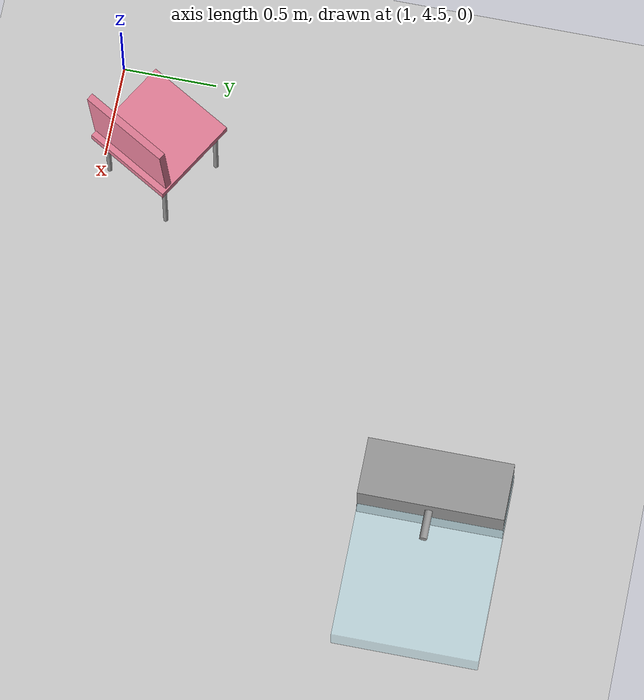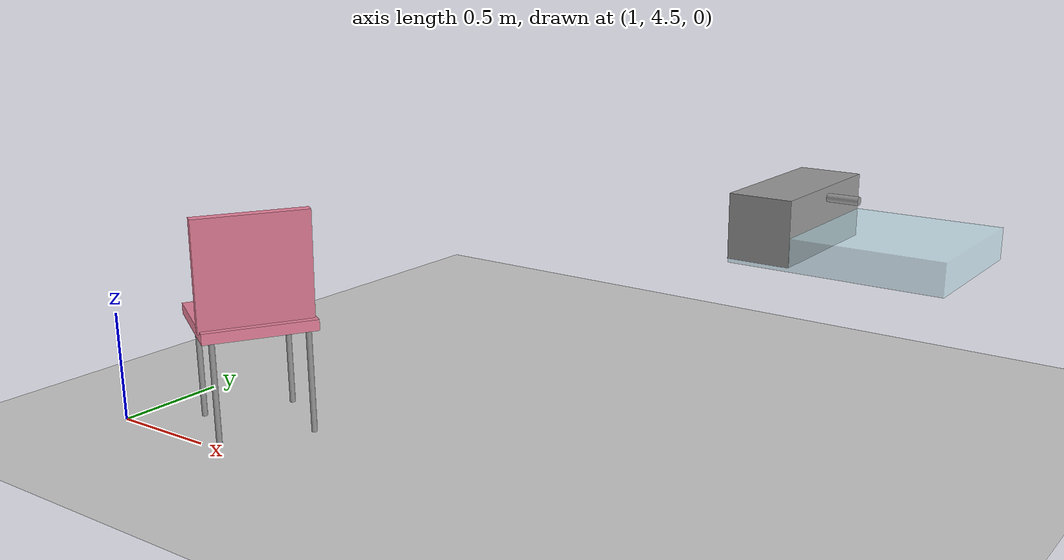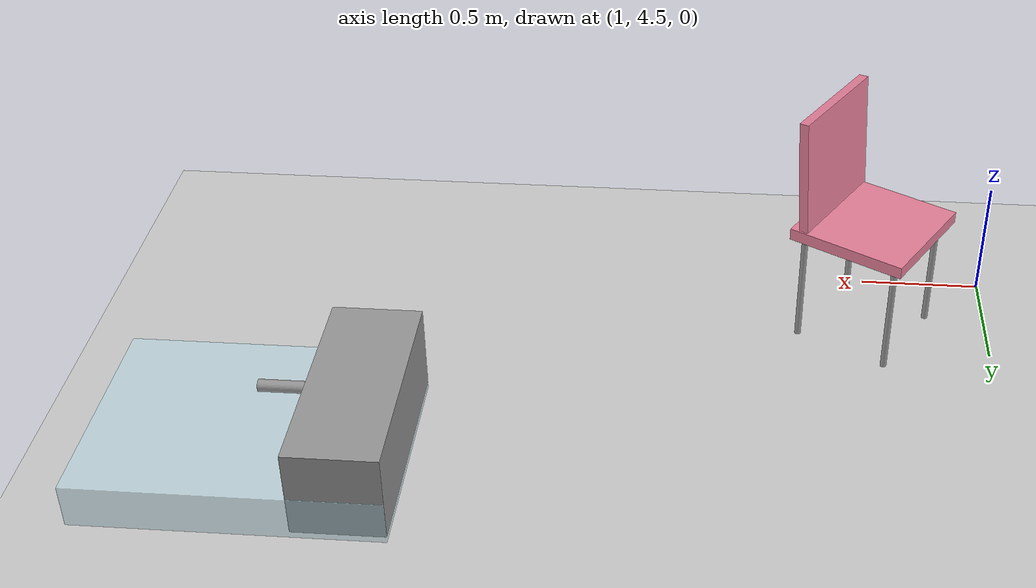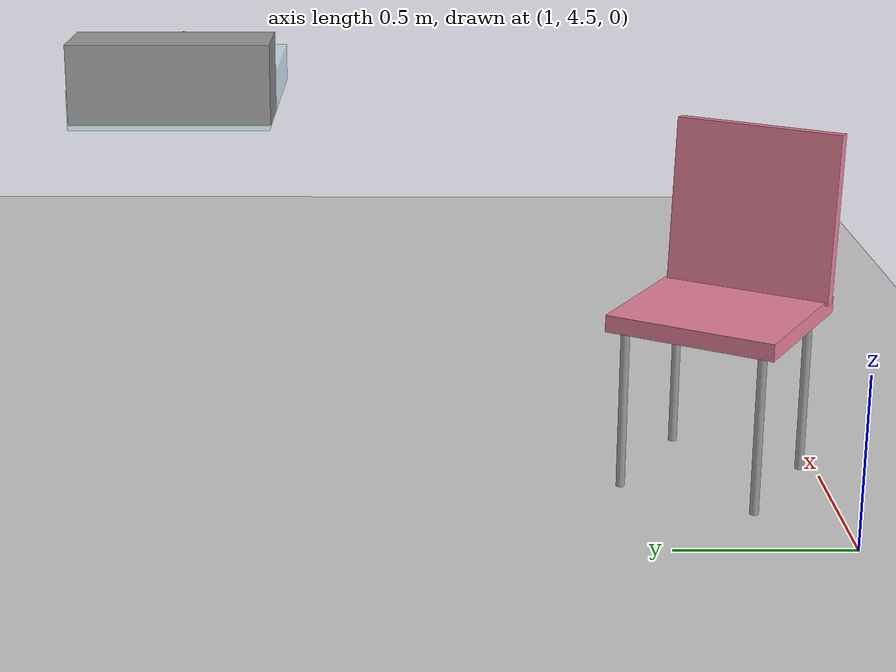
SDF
<sdf version="1.7">
 <world name="default">
  <model name="ground_plane">
   <static>1</static>
   <link name="link">
    <collision name="collision">
     <geometry><plane><normal>0 0 1</normal><size>100 100</size></plane></geometry>
     <surface>
      <contact><collide_bitmask>65535</collide_bitmask></contact>
      <friction><ode><mu>100</mu><mu2>50</mu2></ode></friction>
     </surface>
    </collision>
    <visual name="visual">
     <cast_shadows>0</cast_shadows>
     <geometry><plane><normal>0 0 1</normal><size>100 100</size></plane></geometry>
     <material>
      <script><uri>file://media/materials/scripts/gazebo.material</uri><name>Gazebo/Grey</name></script>
     </material>
    </visual>
   </link>
  </model>
  <model name="my_chair">
   <link name="link">
    <inertial>
     <mass>1</mass>
     <inertia>
      <ixx>0.166667</ixx>
      <ixy>0</ixy>
      <ixz>0</ixz>
      <iyy>0.166667</iyy>
      <iyz>0</iyz>
      <izz>0.166667</izz>
     </inertia>
    </inertial>
    <gravity>0</gravity>
    <visual name="visual">
     <geometry><box><size>0.5 0.5 0.05</size></box></geometry>
     <material>
      <script><name>Gazebo/Grey</name><uri>file://media/materials/scripts/gazebo.material</uri></script>
      <shader type="pixel"><normal_map>__default__</normal_map></shader>
      <ambient>0.9 0.5 0.6 1</ambient>
      <diffuse>0.9 0.5 0.6 1</diffuse>
      <specular>0.01 0.01 0.01 1</specular>
      <emissive>0 0 0 1</emissive>
     </material>
     <pose>0 0 0.5 0 -0 0</pose>
    </visual>
    <collision name="collision">
     <pose>0 0 0.5 0 -0 0</pose>
     <geometry><box><size>0.5 0.5 0.05</size></box></geometry>
     <surface>
      <friction>
       <ode><mu>1</mu><mu2>1</mu2><fdir1>0 0 0</fdir1><slip1>0</slip1><slip2>0</slip2></ode>
       <torsional>
        <coefficient>1</coefficient>
        <patch_radius>0</patch_radius>
        <surface_radius>0</surface_radius>
        <use_patch_radius>1</use_patch_radius>
        <ode><slip>0</slip></ode>
       </torsional>
      </friction>
      <bounce><restitution_coefficient>0</restitution_coefficient><threshold>1e+06</threshold></bounce>
      <contact>
       <collide_without_contact>0</collide_without_contact>
       <collide_without_contact_bitmask>1</collide_without_contact_bitmask>
       <collide_bitmask>1</collide_bitmask>
       <ode>
        <soft_cfm>0</soft_cfm>
        <soft_erp>0.2</soft_erp>
        <kp>1e+13</kp>
        <kd>1</kd>
        <max_vel>0.01</max_vel>
        <min_depth>0</min_depth>
       </ode>
       <bullet>
        <split_impulse>1</split_impulse>
        <split_impulse_penetration_threshold>-0.01</split_impulse_penetration_threshold>
        <soft_cfm>0</soft_cfm>
        <soft_erp>0.2</soft_erp>
        <kp>1e+13</kp>
        <kd>1</kd>
       </bullet>
      </contact>
     </surface>
    </collision>
   </link>
   <link name="link_0">
    <inertial>
     <mass>1</mass>
     <inertia><ixx>0.145833</ixx><ixy>0</ixy><ixz>0</ixz><iyy>0.145833</iyy><iyz>0</iyz><izz>0.125</izz></inertia>
    </inertial>
    <pose>-0.200315 -0.184767 -0.272701 -0 -0 -0</pose>
    <gravity>0</gravity>
    <visual name="visual">
     <pose>0 0 0.5 0 -0 0</pose>
     <geometry><cylinder><radius>0.013</radius><length>0.5</length></cylinder></geometry>
     <material>
      <lighting>1</lighting>
      <script><uri>file://media/materials/scripts/gazebo.material</uri><name>Gazebo/Grey</name></script>
      <shader type="pixel"><normal_map>__default__</normal_map></shader>
      <ambient>0.3 0.3 0.3 1</ambient>
      <diffuse>0.7 0.7 0.7 1</diffuse>
      <specular>0.01 0.01 0.01 1</specular>
      <emissive>0 0 0 1</emissive>
     </material>
    </visual>
    <collision name="collision">
     <pose>0 0 0.5 0 -0 0</pose>
     <geometry><cylinder><radius>0.013</radius><length>0.5</length></cylinder></geometry>
     <surface>
      <friction>
       <ode><mu>1</mu><mu2>1</mu2><fdir1>0 0 0</fdir1><slip1>0</slip1><slip2>0</slip2></ode>
       <torsional>
        <coefficient>1</coefficient>
        <patch_radius>0</patch_radius>
        <surface_radius>0</surface_radius>
        <use_patch_radius>1</use_patch_radius>
        <ode><slip>0</slip></ode>
       </torsional>
      </friction>
      <bounce><restitution_coefficient>0</restitution_coefficient><threshold>1e+06</threshold></bounce>
      <contact>
       <collide_without_contact>0</collide_without_contact>
       <collide_without_contact_bitmask>1</collide_without_contact_bitmask>
       <collide_bitmask>1</collide_bitmask>
       <ode>
        <soft_cfm>0</soft_cfm>
        <soft_erp>0.2</soft_erp>
        <kp>1e+13</kp>
        <kd>1</kd>
        <max_vel>0.01</max_vel>
        <min_depth>0</min_depth>
       </ode>
       <bullet>
        <split_impulse>1</split_impulse>
        <split_impulse_penetration_threshold>-0.01</split_impulse_penetration_threshold>
        <soft_cfm>0</soft_cfm>
        <soft_erp>0.2</soft_erp>
        <kp>1e+13</kp>
        <kd>1</kd>
       </bullet>
      </contact>
     </surface>
    </collision>
   </link>
   <link name="link_0_clone">
    <inertial>
     <mass>1</mass>
     <inertia><ixx>0.145833</ixx><ixy>0</ixy><ixz>0</ixz><iyy>0.145833</iyy><iyz>0</iyz><izz>0.125</izz></inertia>
    </inertial>
    <pose>-0.198839 0.194466 -0.272701 -0 -0 -0</pose>
    <gravity>0</gravity>
    <visual name="visual">
     <pose>0 0 0.5 0 -0 0</pose>
     <geometry><cylinder><radius>0.013</radius><length>0.5</length></cylinder></geometry>
     <material>
      <lighting>1</lighting>
      <script><uri>file://media/materials/scripts/gazebo.material</uri><name>Gazebo/Grey</name></script>
      <shader type="pixel"><normal_map>__default__</normal_map></shader>
      <ambient>0.3 0.3 0.3 1</ambient>
      <diffuse>0.7 0.7 0.7 1</diffuse>
      <specular>0.01 0.01 0.01 1</specular>
      <emissive>0 0 0 1</emissive>
     </material>
    </visual>
    <collision name="collision">
     <pose>0 0 0.5 0 -0 0</pose>
     <geometry><cylinder><radius>0.013</radius><length>0.5</length></cylinder></geometry>
     <surface>
      <friction>
       <ode><mu>1</mu><mu2>1</mu2><fdir1>0 0 0</fdir1><slip1>0</slip1><slip2>0</slip2></ode>
       <torsional>
        <coefficient>1</coefficient>
        <patch_radius>0</patch_radius>
        <surface_radius>0</surface_radius>
        <use_patch_radius>1</use_patch_radius>
        <ode><slip>0</slip></ode>
       </torsional>
      </friction>
      <bounce><restitution_coefficient>0</restitution_coefficient><threshold>1e+06</threshold></bounce>
      <contact>
       <collide_without_contact>0</collide_without_contact>
       <collide_without_contact_bitmask>1</collide_without_contact_bitmask>
       <collide_bitmask>1</collide_bitmask>
       <ode>
        <soft_cfm>0</soft_cfm>
        <soft_erp>0.2</soft_erp>
        <kp>1e+13</kp>
        <kd>1</kd>
        <max_vel>0.01</max_vel>
        <min_depth>0</min_depth>
       </ode>
       <bullet>
        <split_impulse>1</split_impulse>
        <split_impulse_penetration_threshold>-0.01</split_impulse_penetration_threshold>
        <soft_cfm>0</soft_cfm>
        <soft_erp>0.2</soft_erp>
        <kp>1e+13</kp>
        <kd>1</kd>
       </bullet>
      </contact>
     </surface>
    </collision>
   </link>
   <link name="link_0_clone_0">
    <inertial>
     <mass>1</mass>
     <inertia><ixx>0.145833</ixx><ixy>0</ixy><ixz>0</ixz><iyy>0.145833</iyy><iyz>0</iyz><izz>0.125</izz></inertia>
    </inertial>
    <pose>0.211914 -0.198881 -0.272701 -0 -0 -0</pose>
    <gravity>0</gravity>
    <visual name="visual">
     <pose>0 0 0.5 0 -0 0</pose>
     <geometry><cylinder><radius>0.013</radius><length>0.5</length></cylinder></geometry>
     <material>
      <lighting>1</lighting>
      <script><uri>file://media/materials/scripts/gazebo.material</uri><name>Gazebo/Grey</name></script>
      <shader type="pixel"><normal_map>__default__</normal_map></shader>
      <ambient>0.3 0.3 0.3 1</ambient>
      <diffuse>0.7 0.7 0.7 1</diffuse>
      <specular>0.01 0.01 0.01 1</specular>
      <emissive>0 0 0 1</emissive>
     </material>
    </visual>
    <collision name="collision">
     <pose>0 0 0.5 0 -0 0</pose>
     <geometry><cylinder><radius>0.013</radius><length>0.5</length></cylinder></geometry>
     <surface>
      <friction>
       <ode><mu>1</mu><mu2>1</mu2><fdir1>0 0 0</fdir1><slip1>0</slip1><slip2>0</slip2></ode>
       <torsional>
        <coefficient>1</coefficient>
        <patch_radius>0</patch_radius>
        <surface_radius>0</surface_radius>
        <use_patch_radius>1</use_patch_radius>
        <ode><slip>0</slip></ode>
       </torsional>
      </friction>
      <bounce><restitution_coefficient>0</restitution_coefficient><threshold>1e+06</threshold></bounce>
      <contact>
       <collide_without_contact>0</collide_without_contact>
       <collide_without_contact_bitmask>1</collide_without_contact_bitmask>
       <collide_bitmask>1</collide_bitmask>
       <ode>
        <soft_cfm>0</soft_cfm>
        <soft_erp>0.2</soft_erp>
        <kp>1e+13</kp>
        <kd>1</kd>
        <max_vel>0.01</max_vel>
        <min_depth>0</min_depth>
       </ode>
       <bullet>
        <split_impulse>1</split_impulse>
        <split_impulse_penetration_threshold>-0.01</split_impulse_penetration_threshold>
        <soft_cfm>0</soft_cfm>
        <soft_erp>0.2</soft_erp>
        <kp>1e+13</kp>
        <kd>1</kd>
       </bullet>
      </contact>
     </surface>
    </collision>
   </link>
   <link name="link_0_clone_1">
    <inertial>
     <mass>1</mass>
     <inertia><ixx>0.145833</ixx><ixy>0</ixy><ixz>0</ixz><iyy>0.145833</iyy><iyz>0</iyz><izz>0.125</izz></inertia>
    </inertial>
    <pose>0.207422 0.203987 -0.272701 -0 -0 -0</pose>
    <gravity>0</gravity>
    <visual name="visual">
     <pose>0 0 0.5 0 -0 0</pose>
     <geometry><cylinder><radius>0.013</radius><length>0.5</length></cylinder></geometry>
     <material>
      <lighting>1</lighting>
      <script><uri>file://media/materials/scripts/gazebo.material</uri><name>Gazebo/Grey</name></script>
      <shader type="pixel"><normal_map>__default__</normal_map></shader>
      <ambient>0.3 0.3 0.3 1</ambient>
      <diffuse>0.7 0.7 0.7 1</diffuse>
      <specular>0.01 0.01 0.01 1</specular>
      <emissive>0 0 0 1</emissive>
     </material>
    </visual>
    <collision name="collision">
     <pose>0 0 0.5 0 -0 0</pose>
     <geometry><cylinder><radius>0.013</radius><length>0.5</length></cylinder></geometry>
     <surface>
      <friction>
       <ode><mu>1</mu><mu2>1</mu2><fdir1>0 0 0</fdir1><slip1>0</slip1><slip2>0</slip2></ode>
       <torsional>
        <coefficient>1</coefficient>
        <patch_radius>0</patch_radius>
        <surface_radius>0</surface_radius>
        <use_patch_radius>1</use_patch_radius>
        <ode><slip>0</slip></ode>
       </torsional>
      </friction>
      <bounce><restitution_coefficient>0</restitution_coefficient><threshold>1e+06</threshold></bounce>
      <contact>
       <collide_without_contact>0</collide_without_contact>
       <collide_without_contact_bitmask>1</collide_without_contact_bitmask>
       <collide_bitmask>1</collide_bitmask>
       <ode>
        <soft_cfm>0</soft_cfm>
        <soft_erp>0.2</soft_erp>
        <kp>1e+13</kp>
        <kd>1</kd>
        <max_vel>0.01</max_vel>
        <min_depth>0</min_depth>
       </ode>
       <bullet>
        <split_impulse>1</split_impulse>
        <split_impulse_penetration_threshold>-0.01</split_impulse_penetration_threshold>
        <soft_cfm>0</soft_cfm>
        <soft_erp>0.2</soft_erp>
        <kp>1e+13</kp>
        <kd>1</kd>
       </bullet>
      </contact>
     </surface>
    </collision>
   </link>
   <link name="link_clone">
    <inertial>
     <mass>1</mass>
     <inertia>
      <ixx>0.166667</ixx>
      <ixy>0</ixy>
      <ixz>0</ixz>
      <iyy>0.166667</iyy>
      <iyz>0</iyz>
      <izz>0.166667</izz>
     </inertia>
    </inertial>
    <pose>-0.00806 -0.212496 0.264135 -0 -0 -0</pose>
    <gravity>0</gravity>
    <visual name="visual">
     <geometry><box><size>0.5 0.5 0.04</size></box></geometry>
     <material>
      <script><name>Gazebo/Grey</name><uri>file://media/materials/scripts/gazebo.material</uri></script>
      <shader type="pixel"><normal_map>__default__</normal_map></shader>
      <ambient>0.9 0.5 0.6 1</ambient>
      <diffuse>0.9 0.5 0.6 1</diffuse>
      <specular>0.01 0.01 0.01 1</specular>
      <emissive>0 0 0 1</emissive>
     </material>
     <pose>0 0 0.5 -1.5 0 0</pose>
    </visual>
    <collision name="collision">
     <pose>0 0 0.5 -1.5 0 0</pose>
     <geometry><box><size>0.5 0.5 0.04</size></box></geometry>
     <surface>
      <friction>
       <ode><mu>1</mu><mu2>1</mu2><fdir1>0 0 0</fdir1><slip1>0</slip1><slip2>0</slip2></ode>
       <torsional>
        <coefficient>1</coefficient>
        <patch_radius>0</patch_radius>
        <surface_radius>0</surface_radius>
        <use_patch_radius>1</use_patch_radius>
        <ode><slip>0</slip></ode>
       </torsional>
      </friction>
      <bounce><restitution_coefficient>0</restitution_coefficient><threshold>1e+06</threshold></bounce>
      <contact>
       <collide_without_contact>0</collide_without_contact>
       <collide_without_contact_bitmask>1</collide_without_contact_bitmask>
       <collide_bitmask>1</collide_bitmask>
       <ode>
        <soft_cfm>0</soft_cfm>
        <soft_erp>0.2</soft_erp>
        <kp>1e+13</kp>
        <kd>1</kd>
        <max_vel>0.01</max_vel>
        <min_depth>0</min_depth>
       </ode>
       <bullet>
        <split_impulse>1</split_impulse>
        <split_impulse_penetration_threshold>-0.01</split_impulse_penetration_threshold>
        <soft_cfm>0</soft_cfm>
        <soft_erp>0.2</soft_erp>
        <kp>1e+13</kp>
        <kd>1</kd>
       </bullet>
      </contact>
     </surface>
    </collision>
   </link>
   <static>1</static>
   <pose>1.51598 4.80908 0 0 -0 1.03862</pose>
  </model>
  <model name="my_kitchen">
   <link name="link_0_clone">
    <inertial>
     <mass>1</mass>
     <inertia><ixx>0.145833</ixx><ixy>0</ixy><ixz>0</ixz><iyy>0.145833</iyy><iyz>0</iyz><izz>0.125</izz></inertia>
    </inertial>
    <pose>-1.12966 -0.882077 0.956076 0 -0 0</pose>
    <gravity>0</gravity>
    <visual name="visual">
     <pose>0 0 0 0 1.5707 0</pose>
     <geometry><cylinder><radius>0.02</radius><length>0.15</length></cylinder></geometry>
     <material>
      <lighting>1</lighting>
      <script><uri>file://media/materials/scripts/gazebo.material</uri><name>Gazebo/Grey</name></script>
      <shader type="pixel"><normal_map>__default__</normal_map></shader>
      <ambient>0.2 0.2 0.2 1</ambient>
      <diffuse>0.2 0.2 0.2 1</diffuse>
      <specular>0.01 0.01 0.01 1</specular>
      <emissive>0 0 0 1</emissive>
     </material>
    </visual>
    <collision name="collision">
     <pose>0 0 0 0 1.5707 0</pose>
     <geometry><cylinder><radius>0.02</radius><length>0.15</length></cylinder></geometry>
     <surface>
      <friction>
       <ode><mu>1</mu><mu2>1</mu2><fdir1>0 0 0</fdir1><slip1>0</slip1><slip2>0</slip2></ode>
       <torsional>
        <coefficient>1</coefficient>
        <patch_radius>0</patch_radius>
        <surface_radius>0</surface_radius>
        <use_patch_radius>1</use_patch_radius>
        <ode><slip>0</slip></ode>
       </torsional>
      </friction>
      <bounce><restitution_coefficient>0</restitution_coefficient><threshold>1e+06</threshold></bounce>
      <contact>
       <collide_without_contact>0</collide_without_contact>
       <collide_without_contact_bitmask>1</collide_without_contact_bitmask>
       <collide_bitmask>1</collide_bitmask>
       <ode>
        <soft_cfm>0</soft_cfm>
        <soft_erp>0.2</soft_erp>
        <kp>1e+13</kp>
        <kd>1</kd>
        <max_vel>0.01</max_vel>
        <min_depth>0</min_depth>
       </ode>
       <bullet>
        <split_impulse>1</split_impulse>
        <split_impulse_penetration_threshold>-0.01</split_impulse_penetration_threshold>
        <soft_cfm>0</soft_cfm>
        <soft_erp>0.2</soft_erp>
        <kp>1e+13</kp>
        <kd>1</kd>
       </bullet>
      </contact>
     </surface>
    </collision>
   </link>
   <link name="link_clone_clone">
    <inertial>
     <mass>1</mass>
     <inertia>
      <ixx>0.166667</ixx>
      <ixy>0</ixy>
      <ixz>0</ixz>
      <iyy>0.166667</iyy>
      <iyz>0</iyz>
      <izz>0.166667</izz>
     </inertia>
    </inertial>
    <pose>-1.36532 -0.875399 0.352062 0 -0 0</pose>
    <visual name="visual">
     <geometry><box><size>0.3 0.75 0.3</size></box></geometry>
     <material>
      <script><name>Gazebo/Grey</name><uri>file://media/materials/scripts/gazebo.material</uri></script>
      <shader type="pixel"><normal_map>__default__</normal_map></shader>
      <ambient>0.8 0.8 0.8 1</ambient>
      <diffuse>0.65 0.65 0.65 1</diffuse>
      <specular>0.01 0.01 0.01 1</specular>
      <emissive>0 0 0 1</emissive>
     </material>
     <pose>0 0 0.5 0 -0 0</pose>
    </visual>
    <collision name="collision">
     <pose>0 0 0.5 0 -0 0</pose>
     <geometry><box><size>0.3 0.75 0.3</size></box></geometry>
     <surface>
      <friction>
       <ode><mu>1</mu><mu2>1</mu2><fdir1>0 0 0</fdir1><slip1>0</slip1><slip2>0</slip2></ode>
       <torsional>
        <coefficient>1</coefficient>
        <patch_radius>0</patch_radius>
        <surface_radius>0</surface_radius>
        <use_patch_radius>1</use_patch_radius>
        <ode><slip>0</slip></ode>
       </torsional>
      </friction>
      <bounce><restitution_coefficient>0</restitution_coefficient><threshold>1e+06</threshold></bounce>
      <contact>
       <collide_without_contact>0</collide_without_contact>
       <collide_without_contact_bitmask>1</collide_without_contact_bitmask>
       <collide_bitmask>1</collide_bitmask>
       <ode>
        <soft_cfm>0</soft_cfm>
        <soft_erp>0.2</soft_erp>
        <kp>1e+13</kp>
        <kd>1</kd>
        <max_vel>0.01</max_vel>
        <min_depth>0</min_depth>
       </ode>
       <bullet>
        <split_impulse>1</split_impulse>
        <split_impulse_penetration_threshold>-0.01</split_impulse_penetration_threshold>
        <soft_cfm>0</soft_cfm>
        <soft_erp>0.2</soft_erp>
        <kp>1e+13</kp>
        <kd>1</kd>
       </bullet>
      </contact>
     </surface>
    </collision>
   </link>
   <link name="link_clone_clone_clone_clone">
    <inertial>
     <mass>1</mass>
     <inertia>
      <ixx>0.166667</ixx>
      <ixy>0</ixy>
      <ixz>0</ixz>
      <iyy>0.166667</iyy>
      <iyz>0</iyz>
      <izz>0.166667</izz>
     </inertia>
    </inertial>
    <pose>-1.0153 -0.871963 0.25818 0 -0 0</pose>
    <visual name="visual">
     <geometry><box><size>1 0.75 0.15</size></box></geometry>
     <material>
      <script><name>Gazebo/Grey</name><uri>file://media/materials/scripts/gazebo.material</uri></script>
      <shader type="pixel"><normal_map>__default__</normal_map></shader>
      <ambient>0.75 0.93 0.98 1</ambient>
      <diffuse>0.75 0.93 0.98 1</diffuse>
      <specular>0.01 0.01 0.01 1</specular>
      <emissive>0 0 0 1</emissive>
     </material>
     <pose>0 0 0.5 0 -0 0</pose>
     <transparency>0.5</transparency>
    </visual>
    <collision name="collision">
     <pose>0 0 0.5 0 -0 0</pose>
     <geometry><box><size>1 0.75 0.15</size></box></geometry>
     <surface>
      <friction>
       <ode><mu>1</mu><mu2>1</mu2><fdir1>0 0 0</fdir1><slip1>0</slip1><slip2>0</slip2></ode>
       <torsional>
        <coefficient>1</coefficient>
        <patch_radius>0</patch_radius>
        <surface_radius>0</surface_radius>
        <use_patch_radius>1</use_patch_radius>
        <ode><slip>0</slip></ode>
       </torsional>
      </friction>
      <bounce><restitution_coefficient>0</restitution_coefficient><threshold>1e+06</threshold></bounce>
      <contact>
       <collide_without_contact>0</collide_without_contact>
       <collide_without_contact_bitmask>1</collide_without_contact_bitmask>
       <collide_bitmask>1</collide_bitmask>
       <ode>
        <soft_cfm>0</soft_cfm>
        <soft_erp>0.2</soft_erp>
        <kp>1e+13</kp>
        <kd>1</kd>
        <max_vel>0.01</max_vel>
        <min_depth>0</min_depth>
       </ode>
       <bullet>
        <split_impulse>1</split_impulse>
        <split_impulse_penetration_threshold>-0.01</split_impulse_penetration_threshold>
        <soft_cfm>0</soft_cfm>
        <soft_erp>0.2</soft_erp>
        <kp>1e+13</kp>
        <kd>1</kd>
       </bullet>
      </contact>
     </surface>
    </collision>
   </link>
   <static>1</static>
   <pose>4.63339 7.47111 0 0 -0 0</pose>
  </model>
 </world>
</sdf>
